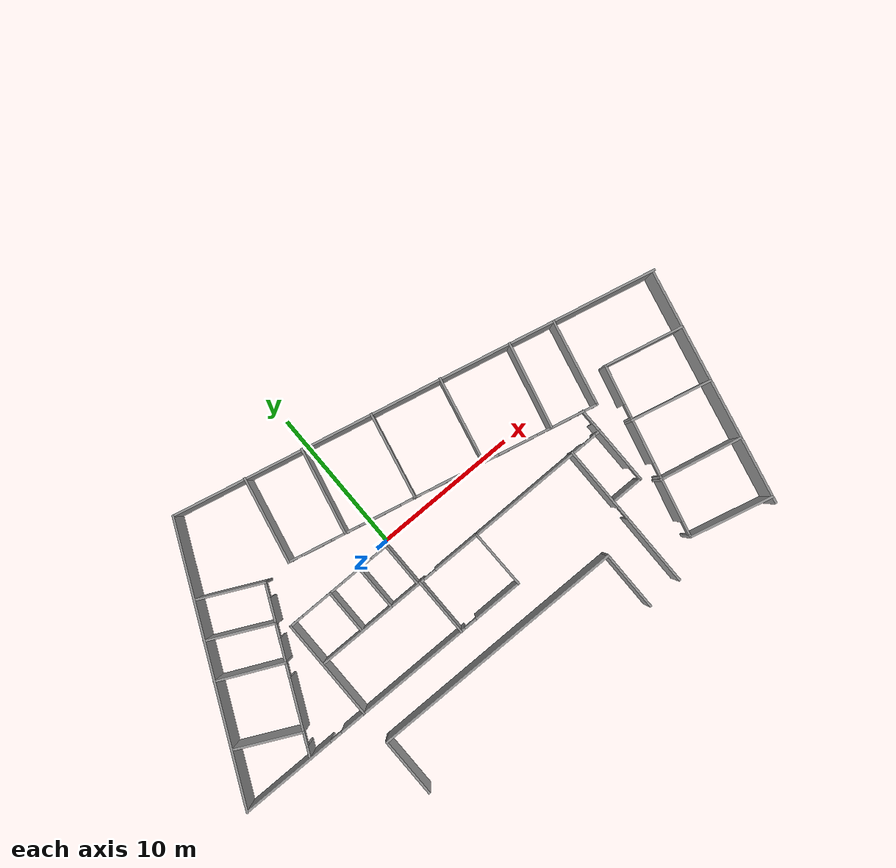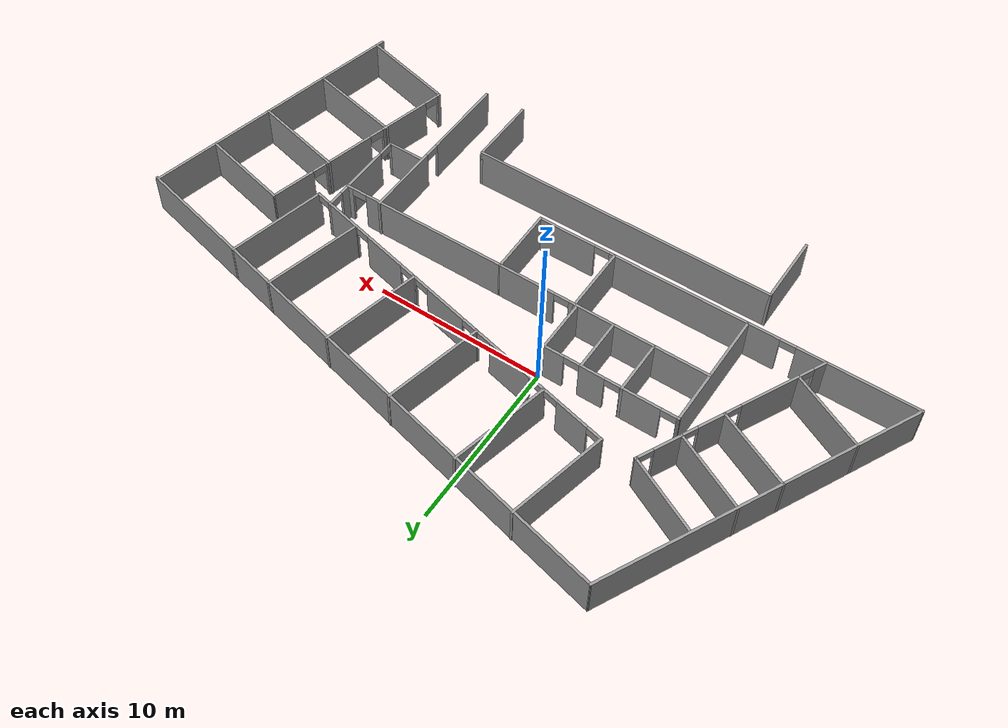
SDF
<?xml version='1.0'?>
<sdf version='1.7'>
<world name="IMVS large">
  <model name='imvs'>
    <pose>3.20011 -2.04129 0 0 -0 0</pose>
    <link name='Wall_1'>
      <collision name='Wall_1_Collision'>
        <geometry>
          <box>
            <size>19.2359 0.15 2.5</size>
          </box>
        </geometry>
        <pose>0 0 1.25 0 -0 0</pose>
      </collision>
      <visual name='Wall_1_Visual'>
        <pose>0 0 1.25 0 -0 0</pose>
        <geometry>
          <box>
            <size>19.2359 0.15 2.5</size>
          </box>
        </geometry>
        <material>
          <script>
            <uri>file://media/materials/scripts/gazebo.material</uri>
            <name>Gazebo/Grey</name>
          </script>
          <ambient>1 1 1 1</ambient>
        </material>
        <meta>
          <layer>0</layer>
        </meta>
      </visual>
      <pose>-16.4354 3.24341 0 0 -0 1.11528</pose>
    </link>
    <link name='Wall_108'>
      <collision name='Wall_108_Collision'>
        <geometry>
          <box>
            <size>5.49924 0.15 2.5</size>
          </box>
        </geometry>
        <pose>0 0 1.25 0 -0 0</pose>
      </collision>
      <visual name='Wall_108_Visual'>
        <pose>0 0 1.25 0 -0 0</pose>
        <geometry>
          <box>
            <size>5.49924 0.15 2.5</size>
          </box>
        </geometry>
        <material>
          <script>
            <uri>file://media/materials/scripts/gazebo.material</uri>
            <name>Gazebo/Grey</name>
          </script>
          <ambient>1 1 1 1</ambient>
        </material>
        <meta>
          <layer>0</layer>
        </meta>
      </visual>
      <pose>17.08 0.957927 0 0 -0 -0.228103</pose>
    </link>
    <link name='Wall_11'>
      <collision name='Wall_11_Collision'>
        <geometry>
          <box>
            <size>7.25 0.15 2.5</size>
          </box>
        </geometry>
        <pose>0 0 1.25 0 -0 0</pose>
      </collision>
      <visual name='Wall_11_Visual'>
        <pose>0 0 1.25 0 -0 0</pose>
        <geometry>
          <box>
            <size>7.25 0.15 2.5</size>
          </box>
        </geometry>
        <material>
          <script>
            <uri>file://media/materials/scripts/gazebo.material</uri>
            <name>Gazebo/Grey</name>
          </script>
          <ambient>1 1 1 1</ambient>
        </material>
        <meta>
          <layer>0</layer>
        </meta>
      </visual>
      <pose>-11.0665 -1.75055 0 0 -0 1.5708</pose>
    </link>
    <link name='Wall_110'>
      <collision name='Wall_110_Collision'>
        <geometry>
          <box>
            <size>5.64573 0.15 2.5</size>
          </box>
        </geometry>
        <pose>0 0 1.25 0 -0 0</pose>
      </collision>
      <visual name='Wall_110_Visual'>
        <pose>0 0 1.25 0 -0 0</pose>
        <geometry>
          <box>
            <size>5.64573 0.15 2.5</size>
          </box>
        </geometry>
        <material>
          <script>
            <uri>file://media/materials/scripts/gazebo.material</uri>
            <name>Gazebo/Grey</name>
          </script>
          <ambient>1 1 1 1</ambient>
        </material>
        <meta>
          <layer>0</layer>
        </meta>
      </visual>
      <pose>16.2193 -2.74072 0 0 -0 2.91099</pose>
    </link>
    <link name='Wall_112'>
      <collision name='Wall_112_Collision'>
        <geometry>
          <box>
            <size>5.77151 0.15 2.5</size>
          </box>
        </geometry>
        <pose>0 0 1.25 0 -0 0</pose>
      </collision>
      <visual name='Wall_112_Visual'>
        <pose>0 0 1.25 0 -0 0</pose>
        <geometry>
          <box>
            <size>5.77151 0.15 2.5</size>
          </box>
        </geometry>
        <material>
          <script>
            <uri>file://media/materials/scripts/gazebo.material</uri>
            <name>Gazebo/Grey</name>
          </script>
          <ambient>1 1 1 1</ambient>
        </material>
        <meta>
          <layer>0</layer>
        </meta>
      </visual>
      <pose>15.2656 -6.71852 0 0 -0 2.92472</pose>
    </link>
    <link name='Wall_114'>
      <collision name='Wall_114_Collision'>
        <geometry>
          <box>
            <size>5.75801 0.15 2.5</size>
          </box>
        </geometry>
        <pose>0 0 1.25 0 -0 0</pose>
      </collision>
      <visual name='Wall_114_Visual'>
        <pose>0 0 1.25 0 -0 0</pose>
        <geometry>
          <box>
            <size>5.75801 0.15 2.5</size>
          </box>
        </geometry>
        <material>
          <script>
            <uri>file://media/materials/scripts/gazebo.material</uri>
            <name>Gazebo/Grey</name>
          </script>
          <ambient>1 1 1 1</ambient>
        </material>
        <meta>
          <layer>0</layer>
        </meta>
      </visual>
      <pose>14.4514 -10.7428 0 0 -0 2.89863</pose>
    </link>
    <link name='Wall_116'>
      <pose>13.0557 -4.22949 0 0 -0 -1.81105</pose>
      <visual name='Wall_116_Visual_0'>
        <pose>-4.65478 0 1.25 0 -0 0</pose>
        <geometry>
          <box>
            <size>2.76745 0.15 2.5</size>
          </box>
        </geometry>
        <material>
          <script>
            <uri>file://media/materials/scripts/gazebo.material</uri>
            <name>Gazebo/Grey</name>
          </script>
          <ambient>1 1 1 1</ambient>
        </material>
        <meta>
          <layer>0</layer>
        </meta>
      </visual>
      <collision name='Wall_116_Collision_0'>
        <geometry>
          <box>
            <size>2.76745 0.15 2.5</size>
          </box>
        </geometry>
        <pose>-4.65478 0 1.25 0 -0 0</pose>
      </collision>
      <visual name='Wall_116_Visual_1'>
        <pose>-0.779158 0 1.25 0 -0 0</pose>
        <geometry>
          <box>
            <size>3.1838 0.15 2.5</size>
          </box>
        </geometry>
        <material>
          <script>
            <uri>file://media/materials/scripts/gazebo.material</uri>
            <name>Gazebo/Grey</name>
          </script>
          <ambient>1 1 1 1</ambient>
        </material>
        <meta>
          <layer>0</layer>
        </meta>
      </visual>
      <collision name='Wall_116_Collision_1'>
        <geometry>
          <box>
            <size>3.1838 0.15 2.5</size>
          </box>
        </geometry>
        <pose>-0.779158 0 1.25 0 -0 0</pose>
      </collision>
      <visual name='Wall_116_Visual_2'>
        <pose>3.31096 0 1.25 0 -0 0</pose>
        <geometry>
          <box>
            <size>3.19644 0.15 2.5</size>
          </box>
        </geometry>
        <material>
          <script>
            <uri>file://media/materials/scripts/gazebo.material</uri>
            <name>Gazebo/Grey</name>
          </script>
          <ambient>1 1 1 1</ambient>
        </material>
        <meta>
          <layer>0</layer>
        </meta>
      </visual>
      <collision name='Wall_116_Collision_2'>
        <geometry>
          <box>
            <size>3.19644 0.15 2.5</size>
          </box>
        </geometry>
        <pose>3.31096 0 1.25 0 -0 0</pose>
      </collision>
      <visual name='Wall_116_Visual_3'>
        <pose>5.92385 0 1.25 0 -0 0</pose>
        <geometry>
          <box>
            <size>0.229321 0.15 2.5</size>
          </box>
        </geometry>
        <material>
          <script>
            <uri>file://media/materials/scripts/gazebo.material</uri>
            <name>Gazebo/Grey</name>
          </script>
          <ambient>1 1 1 1</ambient>
        </material>
        <meta>
          <layer>0</layer>
        </meta>
      </visual>
      <collision name='Wall_116_Collision_3'>
        <geometry>
          <box>
            <size>0.229321 0.15 2.5</size>
          </box>
        </geometry>
        <pose>5.92385 0 1.25 0 -0 0</pose>
      </collision>
      <visual name='Wall_116_Visual_4'>
        <pose>-2.82106 0 2.25 0 -0 0</pose>
        <geometry>
          <box>
            <size>0.9 0.15 0.5</size>
          </box>
        </geometry>
        <material>
          <script>
            <uri>file://media/materials/scripts/gazebo.material</uri>
            <name>Gazebo/Grey</name>
          </script>
          <ambient>1 1 1 1</ambient>
        </material>
        <meta>
          <layer>0</layer>
        </meta>
      </visual>
      <collision name='Wall_116_Collision_4'>
        <geometry>
          <box>
            <size>0.9 0.15 0.5</size>
          </box>
        </geometry>
        <pose>-2.82106 0 2.25 0 -0 0</pose>
      </collision>
      <visual name='Wall_116_Visual_5'>
        <pose>1.26275 0 2.25 0 -0 0</pose>
        <geometry>
          <box>
            <size>0.9 0.15 0.5</size>
          </box>
        </geometry>
        <material>
          <script>
            <uri>file://media/materials/scripts/gazebo.material</uri>
            <name>Gazebo/Grey</name>
          </script>
          <ambient>1 1 1 1</ambient>
        </material>
        <meta>
          <layer>0</layer>
        </meta>
      </visual>
      <collision name='Wall_116_Collision_5'>
        <geometry>
          <box>
            <size>0.9 0.15 0.5</size>
          </box>
        </geometry>
        <pose>1.26275 0 2.25 0 -0 0</pose>
      </collision>
      <visual name='Wall_116_Visual_6'>
        <pose>5.35919 0 2.25 0 -0 0</pose>
        <geometry>
          <box>
            <size>0.9 0.15 0.5</size>
          </box>
        </geometry>
        <material>
          <script>
            <uri>file://media/materials/scripts/gazebo.material</uri>
            <name>Gazebo/Grey</name>
          </script>
          <ambient>1 1 1 1</ambient>
        </material>
        <meta>
          <layer>0</layer>
        </meta>
      </visual>
      <collision name='Wall_116_Collision_6'>
        <geometry>
          <box>
            <size>0.9 0.15 0.5</size>
          </box>
        </geometry>
        <pose>5.35919 0 2.25 0 -0 0</pose>
      </collision>
    </link>
    <link name='Wall_118'>
      <pose>9.38475 -6.4568 0 0 -0 -1.5708</pose>
      <visual name='Wall_118_Visual_0'>
        <pose>-3.00695 0 1.25 0 -0 0</pose>
        <geometry>
          <box>
            <size>4.4861 0.15 2.5</size>
          </box>
        </geometry>
        <material>
          <script>
            <uri>file://media/materials/scripts/gazebo.material</uri>
            <name>Gazebo/Grey</name>
          </script>
          <ambient>1 1 1 1</ambient>
        </material>
        <meta>
          <layer>0</layer>
        </meta>
      </visual>
      <collision name='Wall_118_Collision_0'>
        <geometry>
          <box>
            <size>4.4861 0.15 2.5</size>
          </box>
        </geometry>
        <pose>-3.00695 0 1.25 0 -0 0</pose>
      </collision>
      <visual name='Wall_118_Visual_1'>
        <pose>2.69305 0 1.25 0 -0 0</pose>
        <geometry>
          <box>
            <size>5.1139 0.15 2.5</size>
          </box>
        </geometry>
        <material>
          <script>
            <uri>file://media/materials/scripts/gazebo.material</uri>
            <name>Gazebo/Grey</name>
          </script>
          <ambient>1 1 1 1</ambient>
        </material>
        <meta>
          <layer>0</layer>
        </meta>
      </visual>
      <collision name='Wall_118_Collision_1'>
        <geometry>
          <box>
            <size>5.1139 0.15 2.5</size>
          </box>
        </geometry>
        <pose>2.69305 0 1.25 0 -0 0</pose>
      </collision>
      <visual name='Wall_118_Visual_2'>
        <pose>-0.313901 0 2.25 0 -0 0</pose>
        <geometry>
          <box>
            <size>0.9 0.15 0.5</size>
          </box>
        </geometry>
        <material>
          <script>
            <uri>file://media/materials/scripts/gazebo.material</uri>
            <name>Gazebo/Grey</name>
          </script>
          <ambient>1 1 1 1</ambient>
        </material>
        <meta>
          <layer>0</layer>
        </meta>
      </visual>
      <collision name='Wall_118_Collision_2'>
        <geometry>
          <box>
            <size>0.9 0.15 0.5</size>
          </box>
        </geometry>
        <pose>-0.313901 0 2.25 0 -0 0</pose>
      </collision>
    </link>
    <link name='Wall_120'>
      <pose>11.5782 -3.29225 0 0 -0 -1.56704</pose>
      <visual name='Wall_120_Visual_0'>
        <pose>-0.526992 0 1.25 0 -0 0</pose>
        <geometry>
          <box>
            <size>3.02718 0.15 2.5</size>
          </box>
        </geometry>
        <material>
          <script>
            <uri>file://media/materials/scripts/gazebo.material</uri>
            <name>Gazebo/Grey</name>
          </script>
          <ambient>1 1 1 1</ambient>
        </material>
        <meta>
          <layer>0</layer>
        </meta>
      </visual>
      <collision name='Wall_120_Collision_0'>
        <geometry>
          <box>
            <size>3.02718 0.15 2.5</size>
          </box>
        </geometry>
        <pose>-0.526992 0 1.25 0 -0 0</pose>
      </collision>
      <visual name='Wall_120_Visual_1'>
        <pose>1.96359 0 1.25 0 -0 0</pose>
        <geometry>
          <box>
            <size>0.153985 0.15 2.5</size>
          </box>
        </geometry>
        <material>
          <script>
            <uri>file://media/materials/scripts/gazebo.material</uri>
            <name>Gazebo/Grey</name>
          </script>
          <ambient>1 1 1 1</ambient>
        </material>
        <meta>
          <layer>0</layer>
        </meta>
      </visual>
      <collision name='Wall_120_Collision_1'>
        <geometry>
          <box>
            <size>0.153985 0.15 2.5</size>
          </box>
        </geometry>
        <pose>1.96359 0 1.25 0 -0 0</pose>
      </collision>
      <visual name='Wall_120_Visual_2'>
        <pose>1.4366 0 2.25 0 -0 0</pose>
        <geometry>
          <box>
            <size>0.9 0.15 0.5</size>
          </box>
        </geometry>
        <material>
          <script>
            <uri>file://media/materials/scripts/gazebo.material</uri>
            <name>Gazebo/Grey</name>
          </script>
          <ambient>1 1 1 1</ambient>
        </material>
        <meta>
          <layer>0</layer>
        </meta>
      </visual>
      <collision name='Wall_120_Collision_2'>
        <geometry>
          <box>
            <size>0.9 0.15 0.5</size>
          </box>
        </geometry>
        <pose>1.4366 0 2.25 0 -0 0</pose>
      </collision>
    </link>
    <link name='Wall_122'>
      <collision name='Wall_122_Collision'>
        <geometry>
          <box>
            <size>2.25 0.15 2.5</size>
          </box>
        </geometry>
        <pose>0 0 1.25 0 -0 0</pose>
      </collision>
      <visual name='Wall_122_Visual'>
        <pose>0 0 1.25 0 -0 0</pose>
        <geometry>
          <box>
            <size>2.25 0.15 2.5</size>
          </box>
        </geometry>
        <material>
          <script>
            <uri>file://media/materials/scripts/gazebo.material</uri>
            <name>Gazebo/Grey</name>
          </script>
          <ambient>1 1 1 1</ambient>
        </material>
        <meta>
          <layer>0</layer>
        </meta>
      </visual>
      <pose>10.5356 -5.25782 0 0 -0 3.14159</pose>
    </link>
    <link name='Wall_124'>
      <collision name='Wall_124_Collision'>
        <geometry>
          <box>
            <size>18.25 0.15 2.5</size>
          </box>
        </geometry>
        <pose>0 0 1.25 0 -0 0</pose>
      </collision>
      <visual name='Wall_124_Visual'>
        <pose>0 0 1.25 0 -0 0</pose>
        <geometry>
          <box>
            <size>18.25 0.15 2.5</size>
          </box>
        </geometry>
        <material>
          <script>
            <uri>file://media/materials/scripts/gazebo.material</uri>
            <name>Gazebo/Grey</name>
          </script>
          <ambient>1 1 1 1</ambient>
        </material>
        <meta>
          <layer>0</layer>
        </meta>
      </visual>
      <pose>-2.1033 -7.61831 0 0 -0 0</pose>
    </link>
    <link name='Wall_126'>
      <collision name='Wall_126_Collision'>
        <geometry>
          <box>
            <size>4.25 0.15 2.5</size>
          </box>
        </geometry>
        <pose>0 0 1.25 0 -0 0</pose>
      </collision>
      <visual name='Wall_126_Visual'>
        <pose>0 0 1.25 0 -0 0</pose>
        <geometry>
          <box>
            <size>4.25 0.15 2.5</size>
          </box>
        </geometry>
        <material>
          <script>
            <uri>file://media/materials/scripts/gazebo.material</uri>
            <name>Gazebo/Grey</name>
          </script>
          <ambient>1 1 1 1</ambient>
        </material>
        <meta>
          <layer>0</layer>
        </meta>
      </visual>
      <pose>6.9467 -9.66831 0 0 -0 -1.5708</pose>
    </link>
    <link name='Wall_128'>
      <collision name='Wall_128_Collision'>
        <geometry>
          <box>
            <size>4.25 0.15 2.5</size>
          </box>
        </geometry>
        <pose>0 0 1.25 0 -0 0</pose>
      </collision>
      <visual name='Wall_128_Visual'>
        <pose>0 0 1.25 0 -0 0</pose>
        <geometry>
          <box>
            <size>4.25 0.15 2.5</size>
          </box>
        </geometry>
        <material>
          <script>
            <uri>file://media/materials/scripts/gazebo.material</uri>
            <name>Gazebo/Grey</name>
          </script>
          <ambient>1 1 1 1</ambient>
        </material>
        <meta>
          <layer>0</layer>
        </meta>
      </visual>
      <pose>-11.1533 -9.66831 0 0 -0 -1.5708</pose>
    </link>
    <link name='Wall_13'>
      <collision name='Wall_13_Collision'>
        <geometry>
          <box>
            <size>4.11757 0.15 2.5</size>
          </box>
        </geometry>
        <pose>0 0 1.25 0 -0 0</pose>
      </collision>
      <visual name='Wall_13_Visual'>
        <pose>0 0 1.25 0 -0 0</pose>
        <geometry>
          <box>
            <size>4.11757 0.15 2.5</size>
          </box>
        </geometry>
        <material>
          <script>
            <uri>file://media/materials/scripts/gazebo.material</uri>
            <name>Gazebo/Grey</name>
          </script>
          <ambient>1 1 1 1</ambient>
        </material>
        <meta>
          <layer>0</layer>
        </meta>
      </visual>
      <pose>1.52596 -3.3398 0 0 -0 -1.5592</pose>
    </link>
    <link name='Wall_133'>
      <collision name='Wall_133_Collision'>
        <geometry>
          <box>
            <size>4.14084 0.15 2.5</size>
          </box>
        </geometry>
        <pose>0 0 1.25 0 -0 0</pose>
      </collision>
      <visual name='Wall_133_Visual'>
        <pose>0 0 1.25 0 -0 0</pose>
        <geometry>
          <box>
            <size>4.14084 0.15 2.5</size>
          </box>
        </geometry>
        <material>
          <script>
            <uri>file://media/materials/scripts/gazebo.material</uri>
            <name>Gazebo/Grey</name>
          </script>
          <ambient>1 1 1 1</ambient>
        </material>
        <meta>
          <layer>0</layer>
        </meta>
      </visual>
      <pose>-3.12707 -3.31854 0 0 -0 -1.56936</pose>
    </link>
    <link name='Wall_16'>
      <pose>-4.78142 -1.33853 0 0 -0 -0.002788</pose>
      <visual name='Wall_16_Visual_0'>
        <pose>-2.18181 0 1.25 0 -0 0</pose>
        <geometry>
          <box>
            <size>8.3552 0.15 2.5</size>
          </box>
        </geometry>
        <material>
          <script>
            <uri>file://media/materials/scripts/gazebo.material</uri>
            <name>Gazebo/Grey</name>
          </script>
          <ambient>1 1 1 1</ambient>
        </material>
        <meta>
          <layer>0</layer>
        </meta>
      </visual>
      <collision name='Wall_16_Collision_0'>
        <geometry>
          <box>
            <size>8.3552 0.15 2.5</size>
          </box>
        </geometry>
        <pose>-2.18181 0 1.25 0 -0 0</pose>
      </collision>
      <visual name='Wall_16_Visual_1'>
        <pose>4.6276 0 1.25 0 -0 0</pose>
        <geometry>
          <box>
            <size>3.46362 0.15 2.5</size>
          </box>
        </geometry>
        <material>
          <script>
            <uri>file://media/materials/scripts/gazebo.material</uri>
            <name>Gazebo/Grey</name>
          </script>
          <ambient>1 1 1 1</ambient>
        </material>
        <meta>
          <layer>0</layer>
        </meta>
      </visual>
      <collision name='Wall_16_Collision_1'>
        <geometry>
          <box>
            <size>3.46362 0.15 2.5</size>
          </box>
        </geometry>
        <pose>4.6276 0 1.25 0 -0 0</pose>
      </collision>
      <visual name='Wall_16_Visual_2'>
        <pose>2.44579 0 2.25 0 -0 0</pose>
        <geometry>
          <box>
            <size>0.9 0.15 0.5</size>
          </box>
        </geometry>
        <material>
          <script>
            <uri>file://media/materials/scripts/gazebo.material</uri>
            <name>Gazebo/Grey</name>
          </script>
          <ambient>1 1 1 1</ambient>
        </material>
        <meta>
          <layer>0</layer>
        </meta>
      </visual>
      <collision name='Wall_16_Collision_2'>
        <geometry>
          <box>
            <size>0.9 0.15 0.5</size>
          </box>
        </geometry>
        <pose>2.44579 0 2.25 0 -0 0</pose>
      </collision>
    </link>
    <link name='Wall_18'>
      <pose>-7.17995 1.7949 0 0 -0 -0.00117</pose>
      <visual name='Wall_18_Visual_0'>
        <pose>-3.87804 0 1.25 0 -0 0</pose>
        <geometry>
          <box>
            <size>0.167115 0.15 2.5</size>
          </box>
        </geometry>
        <material>
          <script>
            <uri>file://media/materials/scripts/gazebo.material</uri>
            <name>Gazebo/Grey</name>
          </script>
          <ambient>1 1 1 1</ambient>
        </material>
        <meta>
          <layer>0</layer>
        </meta>
      </visual>
      <collision name='Wall_18_Collision_0'>
        <geometry>
          <box>
            <size>0.167115 0.15 2.5</size>
          </box>
        </geometry>
        <pose>-3.87804 0 1.25 0 -0 0</pose>
      </collision>
      <visual name='Wall_18_Visual_1'>
        <pose>-1.7368 0 1.25 0 -0 0</pose>
        <geometry>
          <box>
            <size>2.31537 0.15 2.5</size>
          </box>
        </geometry>
        <material>
          <script>
            <uri>file://media/materials/scripts/gazebo.material</uri>
            <name>Gazebo/Grey</name>
          </script>
          <ambient>1 1 1 1</ambient>
        </material>
        <meta>
          <layer>0</layer>
        </meta>
      </visual>
      <collision name='Wall_18_Collision_1'>
        <geometry>
          <box>
            <size>2.31537 0.15 2.5</size>
          </box>
        </geometry>
        <pose>-1.7368 0 1.25 0 -0 0</pose>
      </collision>
      <visual name='Wall_18_Visual_2'>
        <pose>1.0621 0 1.25 0 -0 0</pose>
        <geometry>
          <box>
            <size>1.48242 0.15 2.5</size>
          </box>
        </geometry>
        <material>
          <script>
            <uri>file://media/materials/scripts/gazebo.material</uri>
            <name>Gazebo/Grey</name>
          </script>
          <ambient>1 1 1 1</ambient>
        </material>
        <meta>
          <layer>0</layer>
        </meta>
      </visual>
      <collision name='Wall_18_Collision_2'>
        <geometry>
          <box>
            <size>1.48242 0.15 2.5</size>
          </box>
        </geometry>
        <pose>1.0621 0 1.25 0 -0 0</pose>
      </collision>
      <visual name='Wall_18_Visual_3'>
        <pose>3.33245 0 1.25 0 -0 0</pose>
        <geometry>
          <box>
            <size>1.25828 0.15 2.5</size>
          </box>
        </geometry>
        <material>
          <script>
            <uri>file://media/materials/scripts/gazebo.material</uri>
            <name>Gazebo/Grey</name>
          </script>
          <ambient>1 1 1 1</ambient>
        </material>
        <meta>
          <layer>0</layer>
        </meta>
      </visual>
      <collision name='Wall_18_Collision_3'>
        <geometry>
          <box>
            <size>1.25828 0.15 2.5</size>
          </box>
        </geometry>
        <pose>3.33245 0 1.25 0 -0 0</pose>
      </collision>
      <visual name='Wall_18_Visual_4'>
        <pose>-3.34448 0 2.25 0 -0 0</pose>
        <geometry>
          <box>
            <size>0.9 0.15 0.5</size>
          </box>
        </geometry>
        <material>
          <script>
            <uri>file://media/materials/scripts/gazebo.material</uri>
            <name>Gazebo/Grey</name>
          </script>
          <ambient>1 1 1 1</ambient>
        </material>
        <meta>
          <layer>0</layer>
        </meta>
      </visual>
      <collision name='Wall_18_Collision_4'>
        <geometry>
          <box>
            <size>0.9 0.15 0.5</size>
          </box>
        </geometry>
        <pose>-3.34448 0 2.25 0 -0 0</pose>
      </collision>
      <visual name='Wall_18_Visual_5'>
        <pose>-0.129112 0 2.25 0 -0 0</pose>
        <geometry>
          <box>
            <size>0.9 0.15 0.5</size>
          </box>
        </geometry>
        <material>
          <script>
            <uri>file://media/materials/scripts/gazebo.material</uri>
            <name>Gazebo/Grey</name>
          </script>
          <ambient>1 1 1 1</ambient>
        </material>
        <meta>
          <layer>0</layer>
        </meta>
      </visual>
      <collision name='Wall_18_Collision_5'>
        <geometry>
          <box>
            <size>0.9 0.15 0.5</size>
          </box>
        </geometry>
        <pose>-0.129112 0 2.25 0 -0 0</pose>
      </collision>
      <visual name='Wall_18_Visual_6'>
        <pose>2.25331 0 2.25 0 -0 0</pose>
        <geometry>
          <box>
            <size>0.9 0.15 0.5</size>
          </box>
        </geometry>
        <material>
          <script>
            <uri>file://media/materials/scripts/gazebo.material</uri>
            <name>Gazebo/Grey</name>
          </script>
          <ambient>1 1 1 1</ambient>
        </material>
        <meta>
          <layer>0</layer>
        </meta>
      </visual>
      <collision name='Wall_18_Collision_6'>
        <geometry>
          <box>
            <size>0.9 0.15 0.5</size>
          </box>
        </geometry>
        <pose>2.25331 0 2.25 0 -0 0</pose>
      </collision>
    </link>
    <link name='Wall_19'>
      <collision name='Wall_19_Collision'>
        <geometry>
          <box>
            <size>3.25 0.15 2.5</size>
          </box>
        </geometry>
        <pose>0 0 1.25 0 -0 0</pose>
      </collision>
      <visual name='Wall_19_Visual'>
        <pose>0 0 1.25 0 -0 0</pose>
        <geometry>
          <box>
            <size>3.25 0.15 2.5</size>
          </box>
        </geometry>
        <material>
          <script>
            <uri>file://media/materials/scripts/gazebo.material</uri>
            <name>Gazebo/Grey</name>
          </script>
          <ambient>1 1 1 1</ambient>
        </material>
        <meta>
          <layer>0</layer>
        </meta>
      </visual>
      <pose>-3.29335 0.240356 0 0 -0 -1.5708</pose>
    </link>
    <link name='Wall_21'>
      <collision name='Wall_21_Collision'>
        <geometry>
          <box>
            <size>3.23984 0.15 2.5</size>
          </box>
        </geometry>
        <pose>0 0 1.25 0 -0 0</pose>
      </collision>
      <visual name='Wall_21_Visual'>
        <pose>0 0 1.25 0 -0 0</pose>
        <geometry>
          <box>
            <size>3.23984 0.15 2.5</size>
          </box>
        </geometry>
        <material>
          <script>
            <uri>file://media/materials/scripts/gazebo.material</uri>
            <name>Gazebo/Grey</name>
          </script>
          <ambient>1 1 1 1</ambient>
        </material>
        <meta>
          <layer>0</layer>
        </meta>
      </visual>
      <pose>-7.85699 0.253277 0 0 -0 -1.572</pose>
    </link>
    <link name='Wall_23'>
      <collision name='Wall_23_Collision'>
        <geometry>
          <box>
            <size>3.25 0.15 2.5</size>
          </box>
        </geometry>
        <pose>0 0 1.25 0 -0 0</pose>
      </collision>
      <visual name='Wall_23_Visual'>
        <pose>0 0 1.25 0 -0 0</pose>
        <geometry>
          <box>
            <size>3.25 0.15 2.5</size>
          </box>
        </geometry>
        <material>
          <script>
            <uri>file://media/materials/scripts/gazebo.material</uri>
            <name>Gazebo/Grey</name>
          </script>
          <ambient>1 1 1 1</ambient>
        </material>
        <meta>
          <layer>0</layer>
        </meta>
      </visual>
      <pose>-5.46928 0.228697 0 0 -0 -1.5708</pose>
    </link>
    <link name='Wall_25'>
      <collision name='Wall_25_Collision'>
        <geometry>
          <box>
            <size>4.71911 0.15 2.5</size>
          </box>
        </geometry>
        <pose>0 0 1.25 0 -0 0</pose>
      </collision>
      <visual name='Wall_25_Visual'>
        <pose>0 0 1.25 0 -0 0</pose>
        <geometry>
          <box>
            <size>4.71911 0.15 2.5</size>
          </box>
        </geometry>
        <material>
          <script>
            <uri>file://media/materials/scripts/gazebo.material</uri>
            <name>Gazebo/Grey</name>
          </script>
          <ambient>1 1 1 1</ambient>
        </material>
        <meta>
          <layer>0</layer>
        </meta>
      </visual>
      <pose>-12.5576 5.93625 0 0 -0 2.68665</pose>
    </link>
    <link name='Wall_27'>
      <pose>-12.9799 -0.1805 0 0 -0 -2.02154</pose>
      <visual name='Wall_27_Visual_0'>
        <pose>-5.66757 0 1.25 0 -0 0</pose>
        <geometry>
          <box>
            <size>0.175281 0.15 2.5</size>
          </box>
        </geometry>
        <material>
          <script>
            <uri>file://media/materials/scripts/gazebo.material</uri>
            <name>Gazebo/Grey</name>
          </script>
          <ambient>1 1 1 1</ambient>
        </material>
        <meta>
          <layer>0</layer>
        </meta>
      </visual>
      <collision name='Wall_27_Collision_0'>
        <geometry>
          <box>
            <size>0.175281 0.15 2.5</size>
          </box>
        </geometry>
        <pose>-5.66757 0 1.25 0 -0 0</pose>
      </collision>
      <visual name='Wall_27_Visual_1'>
        <pose>-3.8343 0 1.25 0 -0 0</pose>
        <geometry>
          <box>
            <size>1.69127 0.15 2.5</size>
          </box>
        </geometry>
        <material>
          <script>
            <uri>file://media/materials/scripts/gazebo.material</uri>
            <name>Gazebo/Grey</name>
          </script>
          <ambient>1 1 1 1</ambient>
        </material>
        <meta>
          <layer>0</layer>
        </meta>
      </visual>
      <collision name='Wall_27_Collision_1'>
        <geometry>
          <box>
            <size>1.69127 0.15 2.5</size>
          </box>
        </geometry>
        <pose>-3.8343 0 1.25 0 -0 0</pose>
      </collision>
      <visual name='Wall_27_Visual_2'>
        <pose>-1.25514 0 1.25 0 -0 0</pose>
        <geometry>
          <box>
            <size>1.66705 0.15 2.5</size>
          </box>
        </geometry>
        <material>
          <script>
            <uri>file://media/materials/scripts/gazebo.material</uri>
            <name>Gazebo/Grey</name>
          </script>
          <ambient>1 1 1 1</ambient>
        </material>
        <meta>
          <layer>0</layer>
        </meta>
      </visual>
      <collision name='Wall_27_Collision_2'>
        <geometry>
          <box>
            <size>1.66705 0.15 2.5</size>
          </box>
        </geometry>
        <pose>-1.25514 0 1.25 0 -0 0</pose>
      </collision>
      <visual name='Wall_27_Visual_3'>
        <pose>2.2529 0 1.25 0 -0 0</pose>
        <geometry>
          <box>
            <size>3.54902 0.15 2.5</size>
          </box>
        </geometry>
        <material>
          <script>
            <uri>file://media/materials/scripts/gazebo.material</uri>
            <name>Gazebo/Grey</name>
          </script>
          <ambient>1 1 1 1</ambient>
        </material>
        <meta>
          <layer>0</layer>
        </meta>
      </visual>
      <collision name='Wall_27_Collision_3'>
        <geometry>
          <box>
            <size>3.54902 0.15 2.5</size>
          </box>
        </geometry>
        <pose>2.2529 0 1.25 0 -0 0</pose>
      </collision>
      <visual name='Wall_27_Visual_4'>
        <pose>5.34131 0 1.25 0 -0 0</pose>
        <geometry>
          <box>
            <size>0.827806 0.15 2.5</size>
          </box>
        </geometry>
        <material>
          <script>
            <uri>file://media/materials/scripts/gazebo.material</uri>
            <name>Gazebo/Grey</name>
          </script>
          <ambient>1 1 1 1</ambient>
        </material>
        <meta>
          <layer>0</layer>
        </meta>
      </visual>
      <collision name='Wall_27_Collision_4'>
        <geometry>
          <box>
            <size>0.827806 0.15 2.5</size>
          </box>
        </geometry>
        <pose>5.34131 0 1.25 0 -0 0</pose>
      </collision>
      <visual name='Wall_27_Visual_5'>
        <pose>-5.12993 0 2.25 0 -0 0</pose>
        <geometry>
          <box>
            <size>0.9 0.15 0.5</size>
          </box>
        </geometry>
        <material>
          <script>
            <uri>file://media/materials/scripts/gazebo.material</uri>
            <name>Gazebo/Grey</name>
          </script>
          <ambient>1 1 1 1</ambient>
        </material>
        <meta>
          <layer>0</layer>
        </meta>
      </visual>
      <collision name='Wall_27_Collision_5'>
        <geometry>
          <box>
            <size>0.9 0.15 0.5</size>
          </box>
        </geometry>
        <pose>-5.12993 0 2.25 0 -0 0</pose>
      </collision>
      <visual name='Wall_27_Visual_6'>
        <pose>-2.53866 0 2.25 0 -0 0</pose>
        <geometry>
          <box>
            <size>0.9 0.15 0.5</size>
          </box>
        </geometry>
        <material>
          <script>
            <uri>file://media/materials/scripts/gazebo.material</uri>
            <name>Gazebo/Grey</name>
          </script>
          <ambient>1 1 1 1</ambient>
        </material>
        <meta>
          <layer>0</layer>
        </meta>
      </visual>
      <collision name='Wall_27_Collision_6'>
        <geometry>
          <box>
            <size>0.9 0.15 0.5</size>
          </box>
        </geometry>
        <pose>-2.53866 0 2.25 0 -0 0</pose>
      </collision>
      <visual name='Wall_27_Visual_7'>
        <pose>0.028384 0 2.25 0 -0 0</pose>
        <geometry>
          <box>
            <size>0.9 0.15 0.5</size>
          </box>
        </geometry>
        <material>
          <script>
            <uri>file://media/materials/scripts/gazebo.material</uri>
            <name>Gazebo/Grey</name>
          </script>
          <ambient>1 1 1 1</ambient>
        </material>
        <meta>
          <layer>0</layer>
        </meta>
      </visual>
      <collision name='Wall_27_Collision_7'>
        <geometry>
          <box>
            <size>0.9 0.15 0.5</size>
          </box>
        </geometry>
        <pose>0.028384 0 2.25 0 -0 0</pose>
      </collision>
      <visual name='Wall_27_Visual_8'>
        <pose>4.47741 0 2.25 0 -0 0</pose>
        <geometry>
          <box>
            <size>0.9 0.15 0.5</size>
          </box>
        </geometry>
        <material>
          <script>
            <uri>file://media/materials/scripts/gazebo.material</uri>
            <name>Gazebo/Grey</name>
          </script>
          <ambient>1 1 1 1</ambient>
        </material>
        <meta>
          <layer>0</layer>
        </meta>
      </visual>
      <collision name='Wall_27_Collision_8'>
        <geometry>
          <box>
            <size>0.9 0.15 0.5</size>
          </box>
        </geometry>
        <pose>4.47741 0 2.25 0 -0 0</pose>
      </collision>
    </link>
    <link name='Wall_29'>
      <collision name='Wall_29_Collision'>
        <geometry>
          <box>
            <size>4.77004 0.15 2.5</size>
          </box>
        </geometry>
        <pose>0 0 1.25 0 -0 0</pose>
      </collision>
      <visual name='Wall_29_Visual'>
        <pose>0 0 1.25 0 -0 0</pose>
        <geometry>
          <box>
            <size>4.77004 0.15 2.5</size>
          </box>
        </geometry>
        <material>
          <script>
            <uri>file://media/materials/scripts/gazebo.material</uri>
            <name>Gazebo/Grey</name>
          </script>
          <ambient>1 1 1 1</ambient>
        </material>
        <meta>
          <layer>0</layer>
        </meta>
      </visual>
      <pose>-16.798 -2.74049 0 0 -0 -0.456072</pose>
    </link>
    <link name='Wall_31'>
      <collision name='Wall_31_Collision'>
        <geometry>
          <box>
            <size>4.77085 0.15 2.5</size>
          </box>
        </geometry>
        <pose>0 0 1.25 0 -0 0</pose>
      </collision>
      <visual name='Wall_31_Visual'>
        <pose>0 0 1.25 0 -0 0</pose>
        <geometry>
          <box>
            <size>4.77085 0.15 2.5</size>
          </box>
        </geometry>
        <material>
          <script>
            <uri>file://media/materials/scripts/gazebo.material</uri>
            <name>Gazebo/Grey</name>
          </script>
          <ambient>1 1 1 1</ambient>
        </material>
        <meta>
          <layer>0</layer>
        </meta>
      </visual>
      <pose>-14.8458 1.25951 0 0 -0 -0.443448</pose>
    </link>
    <link name='Wall_33'>
      <collision name='Wall_33_Collision'>
        <geometry>
          <box>
            <size>4.75302 0.15 2.5</size>
          </box>
        </geometry>
        <pose>0 0 1.25 0 -0 0</pose>
      </collision>
      <visual name='Wall_33_Visual'>
        <pose>0 0 1.25 0 -0 0</pose>
        <geometry>
          <box>
            <size>4.75302 0.15 2.5</size>
          </box>
        </geometry>
        <material>
          <script>
            <uri>file://media/materials/scripts/gazebo.material</uri>
            <name>Gazebo/Grey</name>
          </script>
          <ambient>1 1 1 1</ambient>
        </material>
        <meta>
          <layer>0</layer>
        </meta>
      </visual>
      <pose>-13.7249 3.57449 0 0 -0 -0.458061</pose>
    </link>
    <link name='Wall_35'>
      <collision name='Wall_35_Collision'>
        <geometry>
          <box>
            <size>6.04418 0.15 2.5</size>
          </box>
        </geometry>
        <pose>0 0 1.25 0 -0 0</pose>
      </collision>
      <visual name='Wall_35_Visual'>
        <pose>0 0 1.25 0 -0 0</pose>
        <geometry>
          <box>
            <size>6.04418 0.15 2.5</size>
          </box>
        </geometry>
        <material>
          <script>
            <uri>file://media/materials/scripts/gazebo.material</uri>
            <name>Gazebo/Grey</name>
          </script>
          <ambient>1 1 1 1</ambient>
        </material>
        <meta>
          <layer>0</layer>
        </meta>
      </visual>
      <pose>-7.94233 7.82796 0 0 -0 -1.78914</pose>
    </link>
    <link name='Wall_37'>
      <pose>1.96835 2.50605 0 0 -0 -0.227734</pose>
      <visual name='Wall_37_Visual_0'>
        <pose>-10.8479 0 1.25 0 -0 0</pose>
        <geometry>
          <box>
            <size>0.111606 0.15 2.5</size>
          </box>
        </geometry>
        <material>
          <script>
            <uri>file://media/materials/scripts/gazebo.material</uri>
            <name>Gazebo/Grey</name>
          </script>
          <ambient>1 1 1 1</ambient>
        </material>
        <meta>
          <layer>0</layer>
        </meta>
      </visual>
      <collision name='Wall_37_Collision_0'>
        <geometry>
          <box>
            <size>0.111606 0.15 2.5</size>
          </box>
        </geometry>
        <pose>-10.8479 0 1.25 0 -0 0</pose>
      </collision>
      <visual name='Wall_37_Visual_1'>
        <pose>-8.85799 0 1.25 0 -0 0</pose>
        <geometry>
          <box>
            <size>2.06812 0.15 2.5</size>
          </box>
        </geometry>
        <material>
          <script>
            <uri>file://media/materials/scripts/gazebo.material</uri>
            <name>Gazebo/Grey</name>
          </script>
          <ambient>1 1 1 1</ambient>
        </material>
        <meta>
          <layer>0</layer>
        </meta>
      </visual>
      <collision name='Wall_37_Collision_1'>
        <geometry>
          <box>
            <size>2.06812 0.15 2.5</size>
          </box>
        </geometry>
        <pose>-8.85799 0 1.25 0 -0 0</pose>
      </collision>
      <visual name='Wall_37_Visual_2'>
        <pose>-6.83724 0 1.25 0 -0 0</pose>
        <geometry>
          <box>
            <size>0.17338 0.15 2.5</size>
          </box>
        </geometry>
        <material>
          <script>
            <uri>file://media/materials/scripts/gazebo.material</uri>
            <name>Gazebo/Grey</name>
          </script>
          <ambient>1 1 1 1</ambient>
        </material>
        <meta>
          <layer>0</layer>
        </meta>
      </visual>
      <collision name='Wall_37_Collision_2'>
        <geometry>
          <box>
            <size>0.17338 0.15 2.5</size>
          </box>
        </geometry>
        <pose>-6.83724 0 1.25 0 -0 0</pose>
      </collision>
      <visual name='Wall_37_Visual_3'>
        <pose>-4.41776 0 1.25 0 -0 0</pose>
        <geometry>
          <box>
            <size>2.86559 0.15 2.5</size>
          </box>
        </geometry>
        <material>
          <script>
            <uri>file://media/materials/scripts/gazebo.material</uri>
            <name>Gazebo/Grey</name>
          </script>
          <ambient>1 1 1 1</ambient>
        </material>
        <meta>
          <layer>0</layer>
        </meta>
      </visual>
      <collision name='Wall_37_Collision_3'>
        <geometry>
          <box>
            <size>2.86559 0.15 2.5</size>
          </box>
        </geometry>
        <pose>-4.41776 0 1.25 0 -0 0</pose>
      </collision>
      <visual name='Wall_37_Visual_4'>
        <pose>-1.96462 0 1.25 0 -0 0</pose>
        <geometry>
          <box>
            <size>0.240692 0.15 2.5</size>
          </box>
        </geometry>
        <material>
          <script>
            <uri>file://media/materials/scripts/gazebo.material</uri>
            <name>Gazebo/Grey</name>
          </script>
          <ambient>1 1 1 1</ambient>
        </material>
        <meta>
          <layer>0</layer>
        </meta>
      </visual>
      <collision name='Wall_37_Collision_4'>
        <geometry>
          <box>
            <size>0.240692 0.15 2.5</size>
          </box>
        </geometry>
        <pose>-1.96462 0 1.25 0 -0 0</pose>
      </collision>
      <visual name='Wall_37_Visual_5'>
        <pose>0.423527 0 1.25 0 -0 0</pose>
        <geometry>
          <box>
            <size>2.73561 0.15 2.5</size>
          </box>
        </geometry>
        <material>
          <script>
            <uri>file://media/materials/scripts/gazebo.material</uri>
            <name>Gazebo/Grey</name>
          </script>
          <ambient>1 1 1 1</ambient>
        </material>
        <meta>
          <layer>0</layer>
        </meta>
      </visual>
      <collision name='Wall_37_Collision_5'>
        <geometry>
          <box>
            <size>2.73561 0.15 2.5</size>
          </box>
        </geometry>
        <pose>0.423527 0 1.25 0 -0 0</pose>
      </collision>
      <visual name='Wall_37_Visual_6'>
        <pose>2.85249 0 1.25 0 -0 0</pose>
        <geometry>
          <box>
            <size>0.322314 0.15 2.5</size>
          </box>
        </geometry>
        <material>
          <script>
            <uri>file://media/materials/scripts/gazebo.material</uri>
            <name>Gazebo/Grey</name>
          </script>
          <ambient>1 1 1 1</ambient>
        </material>
        <meta>
          <layer>0</layer>
        </meta>
      </visual>
      <collision name='Wall_37_Collision_6'>
        <geometry>
          <box>
            <size>0.322314 0.15 2.5</size>
          </box>
        </geometry>
        <pose>2.85249 0 1.25 0 -0 0</pose>
      </collision>
      <visual name='Wall_37_Visual_7'>
        <pose>5.26757 0 1.25 0 -0 0</pose>
        <geometry>
          <box>
            <size>2.70785 0.15 2.5</size>
          </box>
        </geometry>
        <material>
          <script>
            <uri>file://media/materials/scripts/gazebo.material</uri>
            <name>Gazebo/Grey</name>
          </script>
          <ambient>1 1 1 1</ambient>
        </material>
        <meta>
          <layer>0</layer>
        </meta>
      </visual>
      <collision name='Wall_37_Collision_7'>
        <geometry>
          <box>
            <size>2.70785 0.15 2.5</size>
          </box>
        </geometry>
        <pose>5.26757 0 1.25 0 -0 0</pose>
      </collision>
      <visual name='Wall_37_Visual_8'>
        <pose>8.73772 0 1.25 0 -0 0</pose>
        <geometry>
          <box>
            <size>2.43244 0.15 2.5</size>
          </box>
        </geometry>
        <material>
          <script>
            <uri>file://media/materials/scripts/gazebo.material</uri>
            <name>Gazebo/Grey</name>
          </script>
          <ambient>1 1 1 1</ambient>
        </material>
        <meta>
          <layer>0</layer>
        </meta>
      </visual>
      <collision name='Wall_37_Collision_8'>
        <geometry>
          <box>
            <size>2.43244 0.15 2.5</size>
          </box>
        </geometry>
        <pose>8.73772 0 1.25 0 -0 0</pose>
      </collision>
      <visual name='Wall_37_Visual_9'>
        <pose>10.8788 0 1.25 0 -0 0</pose>
        <geometry>
          <box>
            <size>0.049723 0.15 2.5</size>
          </box>
        </geometry>
        <material>
          <script>
            <uri>file://media/materials/scripts/gazebo.material</uri>
            <name>Gazebo/Grey</name>
          </script>
          <ambient>1 1 1 1</ambient>
        </material>
        <meta>
          <layer>0</layer>
        </meta>
      </visual>
      <collision name='Wall_37_Collision_9'>
        <geometry>
          <box>
            <size>0.049723 0.15 2.5</size>
          </box>
        </geometry>
        <pose>10.8788 0 1.25 0 -0 0</pose>
      </collision>
      <visual name='Wall_37_Visual_10'>
        <pose>-10.3421 0 2.25 0 -0 0</pose>
        <geometry>
          <box>
            <size>0.9 0.15 0.5</size>
          </box>
        </geometry>
        <material>
          <script>
            <uri>file://media/materials/scripts/gazebo.material</uri>
            <name>Gazebo/Grey</name>
          </script>
          <ambient>1 1 1 1</ambient>
        </material>
        <meta>
          <layer>0</layer>
        </meta>
      </visual>
      <collision name='Wall_37_Collision_10'>
        <geometry>
          <box>
            <size>0.9 0.15 0.5</size>
          </box>
        </geometry>
        <pose>-10.3421 0 2.25 0 -0 0</pose>
      </collision>
      <visual name='Wall_37_Visual_11'>
        <pose>-7.37393 0 2.25 0 -0 0</pose>
        <geometry>
          <box>
            <size>0.9 0.15 0.5</size>
          </box>
        </geometry>
        <material>
          <script>
            <uri>file://media/materials/scripts/gazebo.material</uri>
            <name>Gazebo/Grey</name>
          </script>
          <ambient>1 1 1 1</ambient>
        </material>
        <meta>
          <layer>0</layer>
        </meta>
      </visual>
      <collision name='Wall_37_Collision_11'>
        <geometry>
          <box>
            <size>0.9 0.15 0.5</size>
          </box>
        </geometry>
        <pose>-7.37393 0 2.25 0 -0 0</pose>
      </collision>
      <visual name='Wall_37_Visual_12'>
        <pose>-6.30055 0 2.25 0 -0 0</pose>
        <geometry>
          <box>
            <size>0.9 0.15 0.5</size>
          </box>
        </geometry>
        <material>
          <script>
            <uri>file://media/materials/scripts/gazebo.material</uri>
            <name>Gazebo/Grey</name>
          </script>
          <ambient>1 1 1 1</ambient>
        </material>
        <meta>
          <layer>0</layer>
        </meta>
      </visual>
      <collision name='Wall_37_Collision_12'>
        <geometry>
          <box>
            <size>0.9 0.15 0.5</size>
          </box>
        </geometry>
        <pose>-6.30055 0 2.25 0 -0 0</pose>
      </collision>
      <visual name='Wall_37_Visual_13'>
        <pose>-2.53497 0 2.25 0 -0 0</pose>
        <geometry>
          <box>
            <size>0.9 0.15 0.5</size>
          </box>
        </geometry>
        <material>
          <script>
            <uri>file://media/materials/scripts/gazebo.material</uri>
            <name>Gazebo/Grey</name>
          </script>
          <ambient>1 1 1 1</ambient>
        </material>
        <meta>
          <layer>0</layer>
        </meta>
      </visual>
      <collision name='Wall_37_Collision_13'>
        <geometry>
          <box>
            <size>0.9 0.15 0.5</size>
          </box>
        </geometry>
        <pose>-2.53497 0 2.25 0 -0 0</pose>
      </collision>
      <visual name='Wall_37_Visual_14'>
        <pose>-1.39428 0 2.25 0 -0 0</pose>
        <geometry>
          <box>
            <size>0.9 0.15 0.5</size>
          </box>
        </geometry>
        <material>
          <script>
            <uri>file://media/materials/scripts/gazebo.material</uri>
            <name>Gazebo/Grey</name>
          </script>
          <ambient>1 1 1 1</ambient>
        </material>
        <meta>
          <layer>0</layer>
        </meta>
      </visual>
      <collision name='Wall_37_Collision_14'>
        <geometry>
          <box>
            <size>0.9 0.15 0.5</size>
          </box>
        </geometry>
        <pose>-1.39428 0 2.25 0 -0 0</pose>
      </collision>
      <visual name='Wall_37_Visual_15'>
        <pose>2.24133 0 2.25 0 -0 0</pose>
        <geometry>
          <box>
            <size>0.9 0.15 0.5</size>
          </box>
        </geometry>
        <material>
          <script>
            <uri>file://media/materials/scripts/gazebo.material</uri>
            <name>Gazebo/Grey</name>
          </script>
          <ambient>1 1 1 1</ambient>
        </material>
        <meta>
          <layer>0</layer>
        </meta>
      </visual>
      <collision name='Wall_37_Collision_15'>
        <geometry>
          <box>
            <size>0.9 0.15 0.5</size>
          </box>
        </geometry>
        <pose>2.24133 0 2.25 0 -0 0</pose>
      </collision>
      <visual name='Wall_37_Visual_16'>
        <pose>3.46365 0 2.25 0 -0 0</pose>
        <geometry>
          <box>
            <size>0.9 0.15 0.5</size>
          </box>
        </geometry>
        <material>
          <script>
            <uri>file://media/materials/scripts/gazebo.material</uri>
            <name>Gazebo/Grey</name>
          </script>
          <ambient>1 1 1 1</ambient>
        </material>
        <meta>
          <layer>0</layer>
        </meta>
      </visual>
      <collision name='Wall_37_Collision_16'>
        <geometry>
          <box>
            <size>0.9 0.15 0.5</size>
          </box>
        </geometry>
        <pose>3.46365 0 2.25 0 -0 0</pose>
      </collision>
      <visual name='Wall_37_Visual_17'>
        <pose>7.0715 0 2.25 0 -0 0</pose>
        <geometry>
          <box>
            <size>0.9 0.15 0.5</size>
          </box>
        </geometry>
        <material>
          <script>
            <uri>file://media/materials/scripts/gazebo.material</uri>
            <name>Gazebo/Grey</name>
          </script>
          <ambient>1 1 1 1</ambient>
        </material>
        <meta>
          <layer>0</layer>
        </meta>
      </visual>
      <collision name='Wall_37_Collision_17'>
        <geometry>
          <box>
            <size>0.9 0.15 0.5</size>
          </box>
        </geometry>
        <pose>7.0715 0 2.25 0 -0 0</pose>
      </collision>
      <visual name='Wall_37_Visual_18'>
        <pose>10.4039 0 2.25 0 -0 0</pose>
        <geometry>
          <box>
            <size>0.9 0.15 0.5</size>
          </box>
        </geometry>
        <material>
          <script>
            <uri>file://media/materials/scripts/gazebo.material</uri>
            <name>Gazebo/Grey</name>
          </script>
          <ambient>1 1 1 1</ambient>
        </material>
        <meta>
          <layer>0</layer>
        </meta>
      </visual>
      <collision name='Wall_37_Collision_18'>
        <geometry>
          <box>
            <size>0.9 0.15 0.5</size>
          </box>
        </geometry>
        <pose>10.4039 0 2.25 0 -0 0</pose>
      </collision>
    </link>
    <link name='Wall_38'>
      <collision name='Wall_38_Collision'>
        <geometry>
          <box>
            <size>6.00319 0.15 2.5</size>
          </box>
        </geometry>
        <pose>0 0 1.25 0 -0 0</pose>
      </collision>
      <visual name='Wall_38_Visual'>
        <pose>0 0 1.25 0 -0 0</pose>
        <geometry>
          <box>
            <size>6.00319 0.15 2.5</size>
          </box>
        </geometry>
        <material>
          <script>
            <uri>file://media/materials/scripts/gazebo.material</uri>
            <name>Gazebo/Grey</name>
          </script>
          <ambient>1 1 1 1</ambient>
        </material>
        <meta>
          <layer>0</layer>
        </meta>
      </visual>
      <pose>13.1535 2.91789 0 0 -0 1.3517</pose>
    </link>
    <link name='Wall_4'>
      <pose>-9.58361 -5.32648 0 0 -0 0</pose>
      <visual name='Wall_4_Visual_0'>
        <pose>-7.6733 0 1.25 0 -0 0</pose>
        <geometry>
          <box>
            <size>6.9034 0.15 2.5</size>
          </box>
        </geometry>
        <material>
          <script>
            <uri>file://media/materials/scripts/gazebo.material</uri>
            <name>Gazebo/Grey</name>
          </script>
          <ambient>1 1 1 1</ambient>
        </material>
        <meta>
          <layer>0</layer>
        </meta>
      </visual>
      <collision name='Wall_4_Collision_0'>
        <geometry>
          <box>
            <size>6.9034 0.15 2.5</size>
          </box>
        </geometry>
        <pose>-7.6733 0 1.25 0 -0 0</pose>
      </collision>
      <visual name='Wall_4_Visual_1'>
        <pose>1.72573 0 1.25 0 -0 0</pose>
        <geometry>
          <box>
            <size>10.0947 0.15 2.5</size>
          </box>
        </geometry>
        <material>
          <script>
            <uri>file://media/materials/scripts/gazebo.material</uri>
            <name>Gazebo/Grey</name>
          </script>
          <ambient>1 1 1 1</ambient>
        </material>
        <meta>
          <layer>0</layer>
        </meta>
      </visual>
      <collision name='Wall_4_Collision_1'>
        <geometry>
          <box>
            <size>10.0947 0.15 2.5</size>
          </box>
        </geometry>
        <pose>1.72573 0 1.25 0 -0 0</pose>
      </collision>
      <visual name='Wall_4_Visual_2'>
        <pose>9.39903 0 1.25 0 -0 0</pose>
        <geometry>
          <box>
            <size>3.45194 0.15 2.5</size>
          </box>
        </geometry>
        <material>
          <script>
            <uri>file://media/materials/scripts/gazebo.material</uri>
            <name>Gazebo/Grey</name>
          </script>
          <ambient>1 1 1 1</ambient>
        </material>
        <meta>
          <layer>0</layer>
        </meta>
      </visual>
      <collision name='Wall_4_Collision_2'>
        <geometry>
          <box>
            <size>3.45194 0.15 2.5</size>
          </box>
        </geometry>
        <pose>9.39903 0 1.25 0 -0 0</pose>
      </collision>
      <visual name='Wall_4_Visual_3'>
        <pose>-3.7716 0 2.25 0 -0 0</pose>
        <geometry>
          <box>
            <size>0.9 0.15 0.5</size>
          </box>
        </geometry>
        <material>
          <script>
            <uri>file://media/materials/scripts/gazebo.material</uri>
            <name>Gazebo/Grey</name>
          </script>
          <ambient>1 1 1 1</ambient>
        </material>
        <meta>
          <layer>0</layer>
        </meta>
      </visual>
      <collision name='Wall_4_Collision_3'>
        <geometry>
          <box>
            <size>0.9 0.15 0.5</size>
          </box>
        </geometry>
        <pose>-3.7716 0 2.25 0 -0 0</pose>
      </collision>
      <visual name='Wall_4_Visual_4'>
        <pose>7.22306 0 2.25 0 -0 0</pose>
        <geometry>
          <box>
            <size>0.9 0.15 0.5</size>
          </box>
        </geometry>
        <material>
          <script>
            <uri>file://media/materials/scripts/gazebo.material</uri>
            <name>Gazebo/Grey</name>
          </script>
          <ambient>1 1 1 1</ambient>
        </material>
        <meta>
          <layer>0</layer>
        </meta>
      </visual>
      <collision name='Wall_4_Collision_4'>
        <geometry>
          <box>
            <size>0.9 0.15 0.5</size>
          </box>
        </geometry>
        <pose>7.22306 0 2.25 0 -0 0</pose>
      </collision>
    </link>
    <link name='Wall_40'>
      <collision name='Wall_40_Collision'>
        <geometry>
          <box>
            <size>6.00946 0.15 2.5</size>
          </box>
        </geometry>
        <pose>0 0 1.25 0 -0 0</pose>
      </collision>
      <visual name='Wall_40_Visual'>
        <pose>0 0 1.25 0 -0 0</pose>
        <geometry>
          <box>
            <size>6.00946 0.15 2.5</size>
          </box>
        </geometry>
        <material>
          <script>
            <uri>file://media/materials/scripts/gazebo.material</uri>
            <name>Gazebo/Grey</name>
          </script>
          <ambient>1 1 1 1</ambient>
        </material>
        <meta>
          <layer>0</layer>
        </meta>
      </visual>
      <pose>5.41596 4.74127 0 0 -0 -1.79059</pose>
    </link>
    <link name='Wall_42'>
      <collision name='Wall_42_Collision'>
        <geometry>
          <box>
            <size>6.02101 0.15 2.5</size>
          </box>
        </geometry>
        <pose>0 0 1.25 0 -0 0</pose>
      </collision>
      <visual name='Wall_42_Visual'>
        <pose>0 0 1.25 0 -0 0</pose>
        <geometry>
          <box>
            <size>6.02101 0.15 2.5</size>
          </box>
        </geometry>
        <material>
          <script>
            <uri>file://media/materials/scripts/gazebo.material</uri>
            <name>Gazebo/Grey</name>
          </script>
          <ambient>1 1 1 1</ambient>
        </material>
        <meta>
          <layer>0</layer>
        </meta>
      </visual>
      <pose>0.693647 5.82869 0 0 -0 -1.7875</pose>
    </link>
    <link name='Wall_44'>
      <collision name='Wall_44_Collision'>
        <geometry>
          <box>
            <size>6.00134 0.15 2.5</size>
          </box>
        </geometry>
        <pose>0 0 1.25 0 -0 0</pose>
      </collision>
      <visual name='Wall_44_Visual'>
        <pose>0 0 1.25 0 -0 0</pose>
        <geometry>
          <box>
            <size>6.00134 0.15 2.5</size>
          </box>
        </geometry>
        <material>
          <script>
            <uri>file://media/materials/scripts/gazebo.material</uri>
            <name>Gazebo/Grey</name>
          </script>
          <ambient>1 1 1 1</ambient>
        </material>
        <meta>
          <layer>0</layer>
        </meta>
      </visual>
      <pose>-4.05909 6.95414 0 0 -0 -1.79623</pose>
    </link>
    <link name='Wall_46'>
      <collision name='Wall_46_Collision'>
        <geometry>
          <box>
            <size>5.96732 0.15 2.5</size>
          </box>
        </geometry>
        <pose>0 0 1.25 0 -0 0</pose>
      </collision>
      <visual name='Wall_46_Visual'>
        <pose>0 0 1.25 0 -0 0</pose>
        <geometry>
          <box>
            <size>5.96732 0.15 2.5</size>
          </box>
        </geometry>
        <material>
          <script>
            <uri>file://media/materials/scripts/gazebo.material</uri>
            <name>Gazebo/Grey</name>
          </script>
          <ambient>1 1 1 1</ambient>
        </material>
        <meta>
          <layer>0</layer>
        </meta>
      </visual>
      <pose>10.1079 3.66144 0 0 -0 -1.80563</pose>
    </link>
    <link name='Wall_48'>
      <pose>6.53688 -1.34137 0 0 -0 0.002917</pose>
      <visual name='Wall_48_Visual_0'>
        <pose>-0.667205 0 1.25 0 -0 0</pose>
        <geometry>
          <box>
            <size>8.88347 0.15 2.5</size>
          </box>
        </geometry>
        <material>
          <script>
            <uri>file://media/materials/scripts/gazebo.material</uri>
            <name>Gazebo/Grey</name>
          </script>
          <ambient>1 1 1 1</ambient>
        </material>
        <meta>
          <layer>0</layer>
        </meta>
      </visual>
      <collision name='Wall_48_Collision_0'>
        <geometry>
          <box>
            <size>8.88347 0.15 2.5</size>
          </box>
        </geometry>
        <pose>-0.667205 0 1.25 0 -0 0</pose>
      </collision>
      <visual name='Wall_48_Visual_1'>
        <pose>4.89173 0 1.25 0 -0 0</pose>
        <geometry>
          <box>
            <size>0.434409 0.15 2.5</size>
          </box>
        </geometry>
        <material>
          <script>
            <uri>file://media/materials/scripts/gazebo.material</uri>
            <name>Gazebo/Grey</name>
          </script>
          <ambient>1 1 1 1</ambient>
        </material>
        <meta>
          <layer>0</layer>
        </meta>
      </visual>
      <collision name='Wall_48_Collision_1'>
        <geometry>
          <box>
            <size>0.434409 0.15 2.5</size>
          </box>
        </geometry>
        <pose>4.89173 0 1.25 0 -0 0</pose>
      </collision>
      <visual name='Wall_48_Visual_2'>
        <pose>4.22453 0 2.25 0 -0 0</pose>
        <geometry>
          <box>
            <size>0.9 0.15 0.5</size>
          </box>
        </geometry>
        <material>
          <script>
            <uri>file://media/materials/scripts/gazebo.material</uri>
            <name>Gazebo/Grey</name>
          </script>
          <ambient>1 1 1 1</ambient>
        </material>
        <meta>
          <layer>0</layer>
        </meta>
      </visual>
      <collision name='Wall_48_Collision_2'>
        <geometry>
          <box>
            <size>0.9 0.15 0.5</size>
          </box>
        </geometry>
        <pose>4.22453 0 2.25 0 -0 0</pose>
      </collision>
    </link>
    <link name='Wall_50'>
      <pose>11.5632 -0.513016 0 0 -0 -1.56145</pose>
      <visual name='Wall_50_Visual_0'>
        <pose>-0.80702 0 1.25 0 -0 0</pose>
        <geometry>
          <box>
            <size>0.163367 0.15 2.5</size>
          </box>
        </geometry>
        <material>
          <script>
            <uri>file://media/materials/scripts/gazebo.material</uri>
            <name>Gazebo/Grey</name>
          </script>
          <ambient>1 1 1 1</ambient>
        </material>
        <meta>
          <layer>0</layer>
        </meta>
      </visual>
      <collision name='Wall_50_Collision_0'>
        <geometry>
          <box>
            <size>0.163367 0.15 2.5</size>
          </box>
        </geometry>
        <pose>-0.80702 0 1.25 0 -0 0</pose>
      </collision>
      <visual name='Wall_50_Visual_1'>
        <pose>0.531683 0 1.25 0 -0 0</pose>
        <geometry>
          <box>
            <size>0.714041 0.15 2.5</size>
          </box>
        </geometry>
        <material>
          <script>
            <uri>file://media/materials/scripts/gazebo.material</uri>
            <name>Gazebo/Grey</name>
          </script>
          <ambient>1 1 1 1</ambient>
        </material>
        <meta>
          <layer>0</layer>
        </meta>
      </visual>
      <collision name='Wall_50_Collision_1'>
        <geometry>
          <box>
            <size>0.714041 0.15 2.5</size>
          </box>
        </geometry>
        <pose>0.531683 0 1.25 0 -0 0</pose>
      </collision>
      <visual name='Wall_50_Visual_2'>
        <pose>-0.275337 0 2.25 0 -0 0</pose>
        <geometry>
          <box>
            <size>0.9 0.15 0.5</size>
          </box>
        </geometry>
        <material>
          <script>
            <uri>file://media/materials/scripts/gazebo.material</uri>
            <name>Gazebo/Grey</name>
          </script>
          <ambient>1 1 1 1</ambient>
        </material>
        <meta>
          <layer>0</layer>
        </meta>
      </visual>
      <collision name='Wall_50_Collision_2'>
        <geometry>
          <box>
            <size>0.9 0.15 0.5</size>
          </box>
        </geometry>
        <pose>-0.275337 0 2.25 0 -0 0</pose>
      </collision>
    </link>
    <link name='Wall_53'>
      <collision name='Wall_53_Collision'>
        <geometry>
          <box>
            <size>33.9051 0.15 2.5</size>
          </box>
        </geometry>
        <pose>0 0 1.25 0 -0 0</pose>
      </collision>
      <visual name='Wall_53_Visual'>
        <pose>0 0 1.25 0 -0 0</pose>
        <geometry>
          <box>
            <size>33.9051 0.15 2.5</size>
          </box>
        </geometry>
        <material>
          <script>
            <uri>file://media/materials/scripts/gazebo.material</uri>
            <name>Gazebo/Grey</name>
          </script>
          <ambient>1 1 1 1</ambient>
        </material>
        <meta>
          <layer>0</layer>
        </meta>
      </visual>
      <pose>4.20337 7.99753 0 0 -0 -0.228057</pose>
    </link>
    <link name='Wall_55'>
      <collision name='Wall_55_Collision'>
        <geometry>
          <box>
            <size>16.5203 0.15 2.5</size>
          </box>
        </geometry>
        <pose>0 0 1.25 0 -0 0</pose>
      </collision>
      <visual name='Wall_55_Visual'>
        <pose>0 0 1.25 0 -0 0</pose>
        <geometry>
          <box>
            <size>16.5203 0.15 2.5</size>
          </box>
        </geometry>
        <material>
          <script>
            <uri>file://media/materials/scripts/gazebo.material</uri>
            <name>Gazebo/Grey</name>
          </script>
          <ambient>1 1 1 1</ambient>
        </material>
        <meta>
          <layer>0</layer>
        </meta>
      </visual>
      <pose>18.8169 -3.82244 0 0 -0 1.35891</pose>
    </link>
    <static>1</static>
  </model>
  </world>
</sdf>
